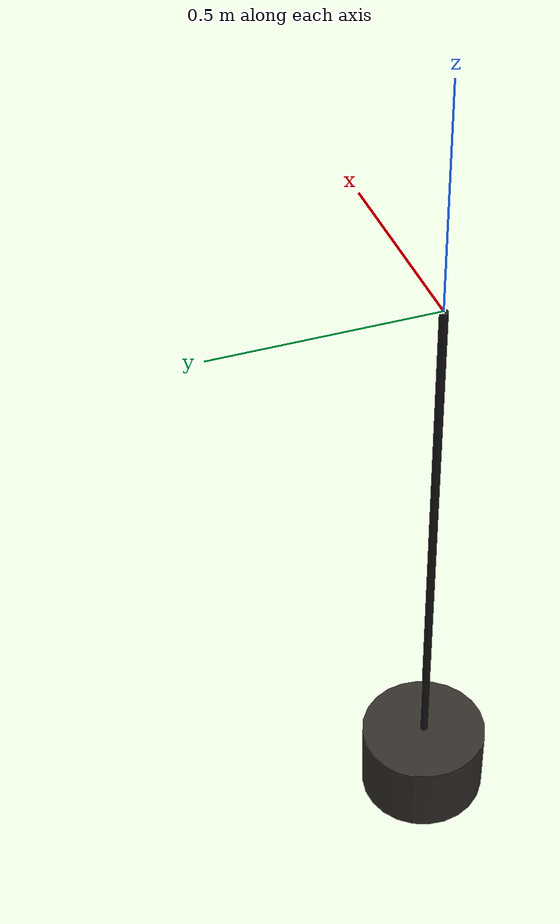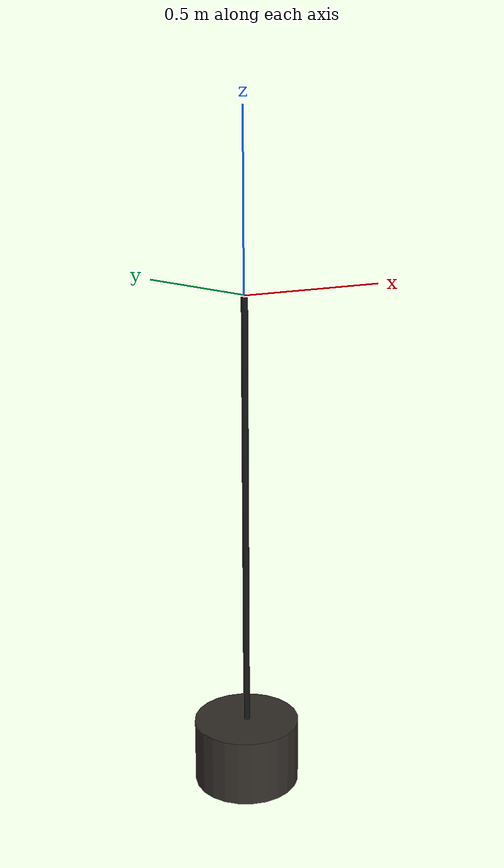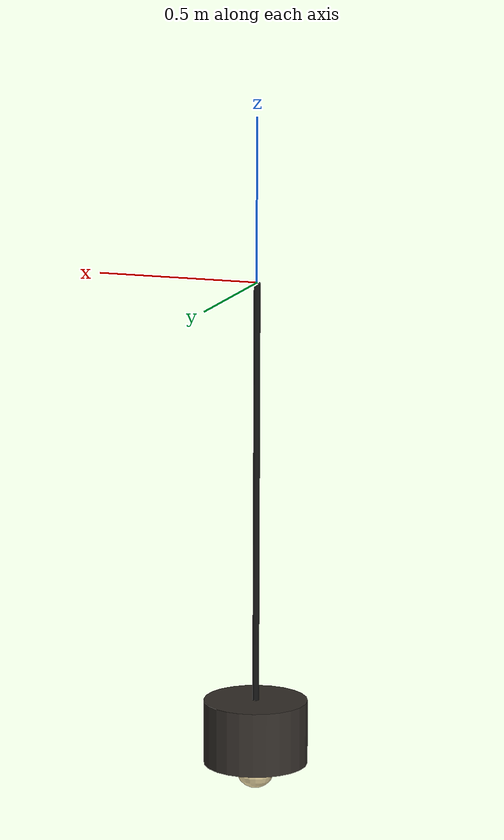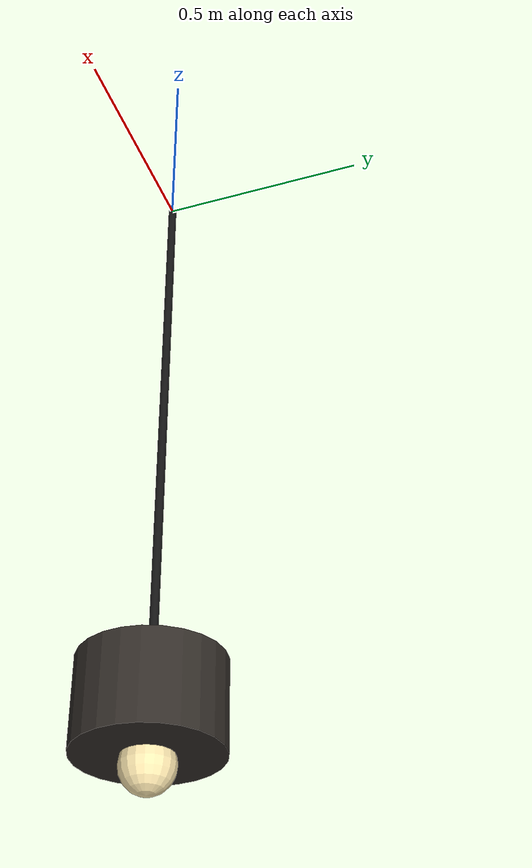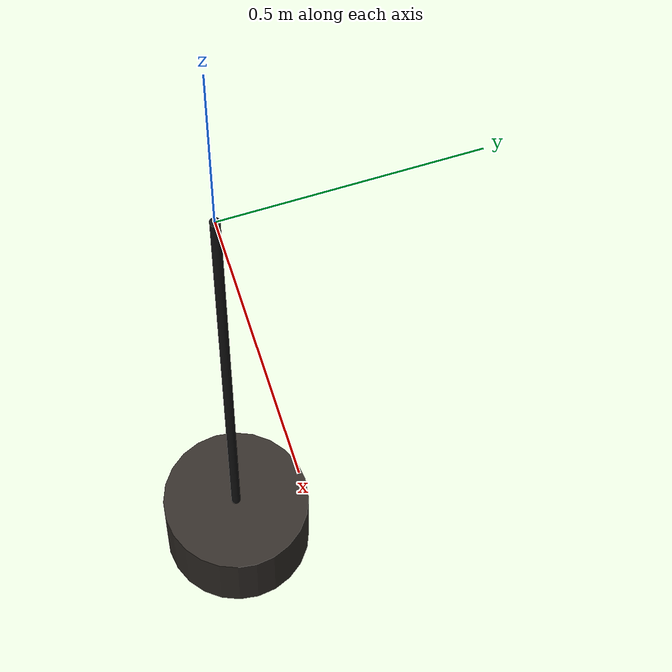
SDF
<?xml version="1.0" ?>
<sdf version="1.6">
  <model name="pendant_light">
    <static>true</static>

    <link name="pendant_link">
      <!-- Cord (drops from ceiling z=0 down to shade top ~ -1.3) -->
      <visual name="cord_vis">
        <pose>0 0 -0.65 0 0 0</pose>
        <geometry><cylinder><radius>0.01</radius><length>1.30</length></cylinder></geometry>
        <material><ambient>0.05 0.05 0.05 1</ambient><diffuse>0.08 0.08 0.08 1</diffuse></material>
      </visual>

      <!-- Shade (cone-like: use cylinder for Classic simplicity) -->
      <visual name="shade_vis">
        <pose>0 0 -1.40 0 0 0</pose>
        <geometry><cylinder><radius>0.16</radius><length>0.20</length></cylinder></geometry>
        <material><ambient>0.14 0.13 0.12 1</ambient><diffuse>0.20 0.18 0.16 1</diffuse><specular>0.35 0.33 0.30 1</specular></material>
      </visual>
      <!-- Emissive bulb / underside glow -->
      <visual name="bulb_vis">
        <pose>0 0 -1.52 0 0 0</pose>
        <geometry><sphere><radius>0.06</radius></sphere></geometry>
        <material>
          <ambient>0.95 0.85 0.60 1</ambient>
          <diffuse>1.0 0.92 0.70 1</diffuse>
          <emissive>1.0 0.90 0.65 1</emissive>
        </material>
      </visual>

      <!-- Warm intimate light pooled over the table -->
      <light name="pendant_light_src" type="point">
        <pose>0 0 -1.55 0 0 0</pose>
        <diffuse>0.80 0.72 0.55 1</diffuse>
        <specular>0.20 0.18 0.14 1</specular>
        <attenuation>
          <range>4.0</range>
          <constant>0.5</constant>
          <linear>0.2</linear>
          <quadratic>0.05</quadratic>
        </attenuation>
        <cast_shadows>false</cast_shadows>
      </light>
    </link>
  </model>
</sdf>
